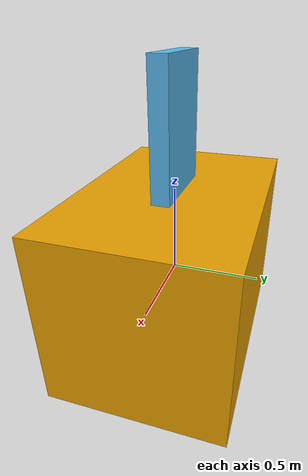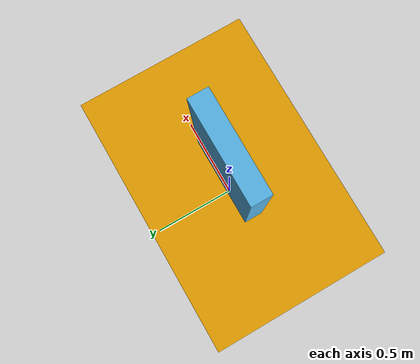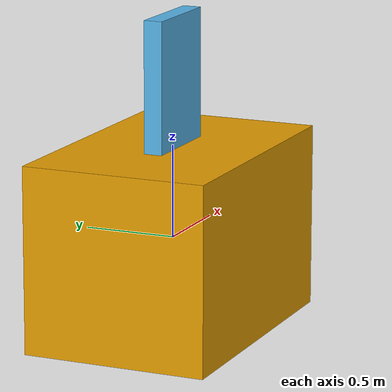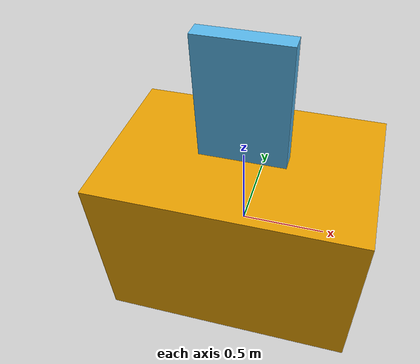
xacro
<?xml version="1.0" ?>

<robot name="mrm" xmlns:xacro="http://www.ros.org/wiki/xacro">
    <link name="base_link">
        <visual>
            <origin rpy="0 0 0" xyz="0 0 0"/>
            <geometry>
                <box size="1.5 1 1"/>
            </geometry>
        </visual>
    </link>

    <joint name="base_link__link01" type="revolute">
        <axis xyz="0 0 1"/>
        <limit effort="1000.0" lower="-3.14" upper="3.14" velocity="0.5"/>
        <origin rpy="0 0 0" xyz="0 0 0.5"/>
        <parent link="base_link"/>
        <child link="link_01"/>
    </joint>

    <link name="link_01">
        <visual>
            <origin rpy="0 0 0" xyz="0 0 0.2"/>
            <geometry>
                <box size="0.5 0.1 1"/>
            </geometry>
        </visual>
    </link>
</robot>
